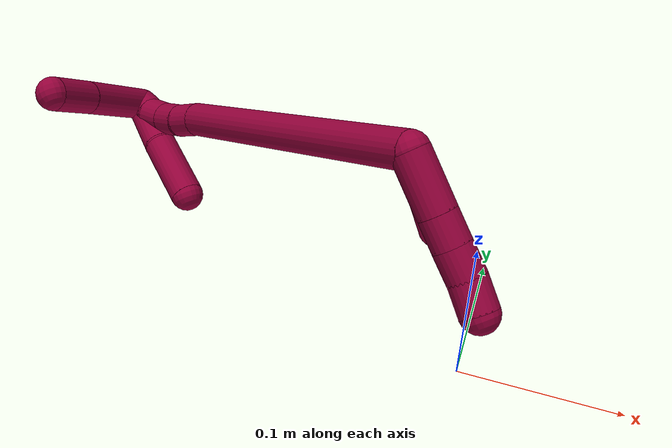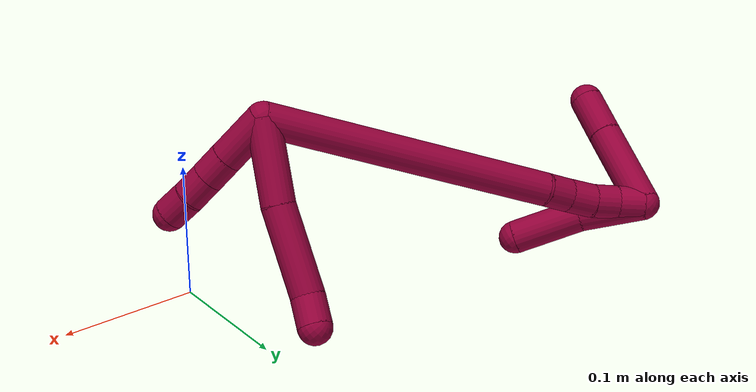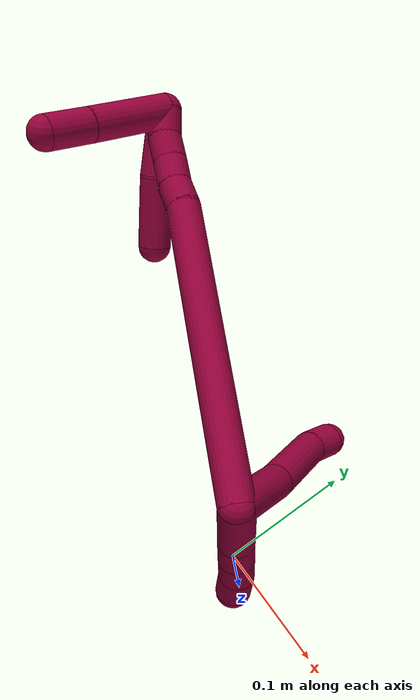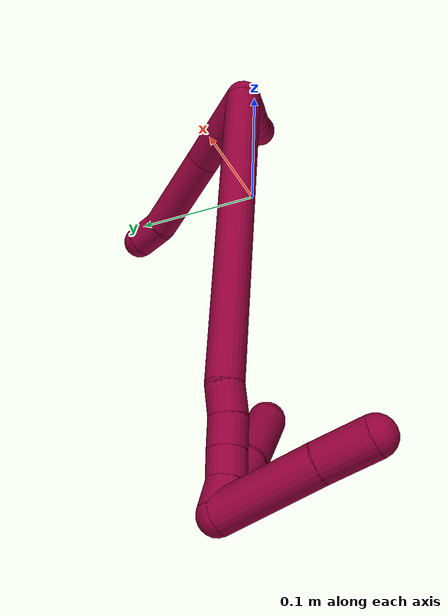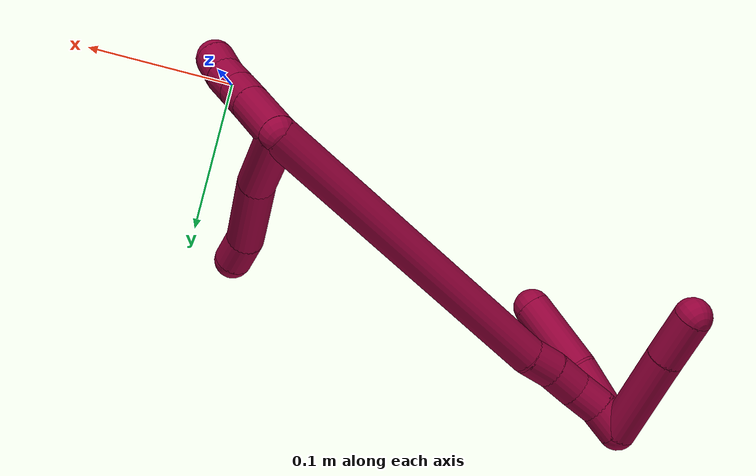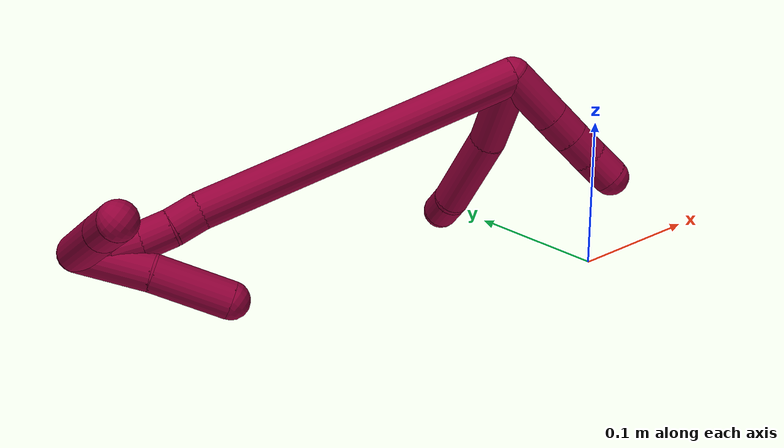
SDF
<sdf version="1.7">
 <world name="default">
  <model name="8">
   <static>0</static>
   <link name="8">
    <collision name="collision-cylinder-e_1_2_8">
     <pose>-0.000963 0.02784 -0.012903 -2.00478 -0.031385 0.049132</pose>
     <geometry><cylinder><radius>0.0125</radius><length>0.061399</length></cylinder></geometry>
     <surface>
      <friction><ode><mu>1.16</mu><mu2>1.16</mu2><slip1>0</slip1><slip2>0</slip2></ode></friction>
      <contact><ode><kp>1e+06</kp><kd>1</kd><max_vel>0</max_vel><min_depth>0.001</min_depth></ode></contact>
     </surface>
    </collision>
    <visual name="visual-cylinder-e_1_2_8">
     <pose>-0.000963 0.02784 -0.012903 -2.00478 -0.031385 0.049132</pose>
     <geometry><cylinder><radius>0.0125</radius><length>0.061399</length></cylinder></geometry>
     <material><ambient>0.584314 0 0.227451 1</ambient></material>
    </visual>
    <collision name="collision-cylinder-e_2_8_9">
     <pose>-0.004386 0.086995 -0.035457 -1.86978 -0.074907 0.101433</pose>
     <geometry><cylinder><radius>0.0125</radius><length>0.065722</length></cylinder></geometry>
     <surface>
      <friction><ode><mu>1.16</mu><mu2>1.16</mu2><slip1>0</slip1><slip2>0</slip2></ode></friction>
      <contact><ode><kp>1e+06</kp><kd>1</kd><max_vel>0</max_vel><min_depth>0.001</min_depth></ode></contact>
     </surface>
    </collision>
    <visual name="visual-cylinder-e_2_8_9">
     <pose>-0.004386 0.086995 -0.035457 -1.86978 -0.074907 0.101433</pose>
     <geometry><cylinder><radius>0.0125</radius><length>0.065722</length></cylinder></geometry>
     <material><ambient>0.584314 0 0.227451 1</ambient></material>
    </visual>
    <collision name="collision-cylinder-e_3_9_6">
     <pose>-0.004389 0.129171 -0.047728 -1.80734 0.216408 -0.27412</pose>
     <geometry><cylinder><radius>0.0125</radius><length>0.022879</length></cylinder></geometry>
     <surface>
      <friction><ode><mu>1.16</mu><mu2>1.16</mu2><slip1>0</slip1><slip2>0</slip2></ode></friction>
      <contact><ode><kp>1e+06</kp><kd>1</kd><max_vel>0</max_vel><min_depth>0.001</min_depth></ode></contact>
     </surface>
    </collision>
    <visual name="visual-cylinder-e_3_9_6">
     <pose>-0.004389 0.129171 -0.047728 -1.80734 0.216408 -0.27412</pose>
     <geometry><cylinder><radius>0.0125</radius><length>0.022879</length></cylinder></geometry>
     <material><ambient>0.584314 0 0.227451 1</ambient></material>
    </visual>
    <collision name="collision-cylinder-e_1_2_10">
     <pose>0.000669 0.002534 -0.01935 -3.01138 0.034269 -0.514059</pose>
     <geometry><cylinder><radius>0.0125</radius><length>0.039052</length></cylinder></geometry>
     <surface>
      <friction><ode><mu>1.16</mu><mu2>1.16</mu2><slip1>0</slip1><slip2>0</slip2></ode></friction>
      <contact><ode><kp>1e+06</kp><kd>1</kd><max_vel>0</max_vel><min_depth>0.001</min_depth></ode></contact>
     </surface>
    </collision>
    <visual name="visual-cylinder-e_1_2_10">
     <pose>0.000669 0.002534 -0.01935 -3.01138 0.034269 -0.514059</pose>
     <geometry><cylinder><radius>0.0125</radius><length>0.039052</length></cylinder></geometry>
     <material><ambient>0.584314 0 0.227451 1</ambient></material>
    </visual>
    <collision name="collision-cylinder-e_2_10_11">
     <pose>0.00175 0.006437 -0.04868 -3.00522 0.040837 -0.58112</pose>
     <geometry><cylinder><radius>0.0125</radius><length>0.020167</length></cylinder></geometry>
     <surface>
      <friction><ode><mu>1.16</mu><mu2>1.16</mu2><slip1>0</slip1><slip2>0</slip2></ode></friction>
      <contact><ode><kp>1e+06</kp><kd>1</kd><max_vel>0</max_vel><min_depth>0.001</min_depth></ode></contact>
     </surface>
    </collision>
    <visual name="visual-cylinder-e_2_10_11">
     <pose>0.00175 0.006437 -0.04868 -3.00522 0.040837 -0.58112</pose>
     <geometry><cylinder><radius>0.0125</radius><length>0.020167</length></cylinder></geometry>
     <material><ambient>0.584314 0 0.227451 1</ambient></material>
    </visual>
    <collision name="collision-cylinder-e_3_11_12">
     <pose>0.0027 0.009131 -0.068731 -3.01086 0.052966 -0.769053</pose>
     <geometry><cylinder><radius>0.0125</radius><length>0.020341</length></cylinder></geometry>
     <surface>
      <friction><ode><mu>1.16</mu><mu2>1.16</mu2><slip1>0</slip1><slip2>0</slip2></ode></friction>
      <contact><ode><kp>1e+06</kp><kd>1</kd><max_vel>0</max_vel><min_depth>0.001</min_depth></ode></contact>
     </surface>
    </collision>
    <visual name="visual-cylinder-e_3_11_12">
     <pose>0.0027 0.009131 -0.068731 -3.01086 0.052966 -0.769053</pose>
     <geometry><cylinder><radius>0.0125</radius><length>0.020341</length></cylinder></geometry>
     <material><ambient>0.584314 0 0.227451 1</ambient></material>
    </visual>
    <collision name="collision-cylinder-e_4_12_5">
     <pose>0.002868 0.010862 -0.089006 -3.10172 -0.036208 1.4745</pose>
     <geometry><cylinder><radius>0.0125</radius><length>0.02044</length></cylinder></geometry>
     <surface>
      <friction><ode><mu>1.16</mu><mu2>1.16</mu2><slip1>0</slip1><slip2>0</slip2></ode></friction>
      <contact><ode><kp>1e+06</kp><kd>1</kd><max_vel>0</max_vel><min_depth>0.001</min_depth></ode></contact>
     </surface>
    </collision>
    <visual name="visual-cylinder-e_4_12_5">
     <pose>0.002868 0.010862 -0.089006 -3.10172 -0.036208 1.4745</pose>
     <geometry><cylinder><radius>0.0125</radius><length>0.02044</length></cylinder></geometry>
     <material><ambient>0.584314 0 0.227451 1</ambient></material>
    </visual>
    <collision name="collision-cylinder-e_1_2_13">
     <pose>-0.072961 0.064626 0.049379 -0.918346 -0.7312 0.374111</pose>
     <geometry><cylinder><radius>0.0125</radius><length>0.218523</length></cylinder></geometry>
     <surface>
      <friction><ode><mu>1.16</mu><mu2>1.16</mu2><slip1>0</slip1><slip2>0</slip2></ode></friction>
      <contact><ode><kp>1e+06</kp><kd>1</kd><max_vel>0</max_vel><min_depth>0.001</min_depth></ode></contact>
     </surface>
    </collision>
    <visual name="visual-cylinder-e_1_2_13">
     <pose>-0.072961 0.064626 0.049379 -0.918346 -0.7312 0.374111</pose>
     <geometry><cylinder><radius>0.0125</radius><length>0.218523</length></cylinder></geometry>
     <material><ambient>0.584314 0 0.227451 1</ambient></material>
    </visual>
    <collision name="collision-cylinder-e_2_13_14">
     <pose>-0.153982 0.134383 0.102354 -0.959659 -0.910038 0.498622</pose>
     <geometry><cylinder><radius>0.0125</radius><length>0.020419</length></cylinder></geometry>
     <surface>
      <friction><ode><mu>1.16</mu><mu2>1.16</mu2><slip1>0</slip1><slip2>0</slip2></ode></friction>
      <contact><ode><kp>1e+06</kp><kd>1</kd><max_vel>0</max_vel><min_depth>0.001</min_depth></ode></contact>
     </surface>
    </collision>
    <visual name="visual-cylinder-e_2_13_14">
     <pose>-0.153982 0.134383 0.102354 -0.959659 -0.910038 0.498622</pose>
     <geometry><cylinder><radius>0.0125</radius><length>0.020419</length></cylinder></geometry>
     <material><ambient>0.584314 0 0.227451 1</ambient></material>
    </visual>
    <collision name="collision-cylinder-e_3_14_15">
     <pose>-0.169205 0.145535 0.110733 -0.899334 -0.749901 0.375435</pose>
     <geometry><cylinder><radius>0.0125</radius><length>0.021016</length></cylinder></geometry>
     <surface>
      <friction><ode><mu>1.16</mu><mu2>1.16</mu2><slip1>0</slip1><slip2>0</slip2></ode></friction>
      <contact><ode><kp>1e+06</kp><kd>1</kd><max_vel>0</max_vel><min_depth>0.001</min_depth></ode></contact>
     </surface>
    </collision>
    <visual name="visual-cylinder-e_3_14_15">
     <pose>-0.169205 0.145535 0.110733 -0.899334 -0.749901 0.375435</pose>
     <geometry><cylinder><radius>0.0125</radius><length>0.021016</length></cylinder></geometry>
     <material><ambient>0.584314 0 0.227451 1</ambient></material>
    </visual>
    <collision name="collision-cylinder-e_4_15_16">
     <pose>-0.183044 0.156294 0.121292 -0.687167 -0.729364 0.271486</pose>
     <geometry><cylinder><radius>0.0125</radius><length>0.020041</length></cylinder></geometry>
     <surface>
      <friction><ode><mu>1.16</mu><mu2>1.16</mu2><slip1>0</slip1><slip2>0</slip2></ode></friction>
      <contact><ode><kp>1e+06</kp><kd>1</kd><max_vel>0</max_vel><min_depth>0.001</min_depth></ode></contact>
     </surface>
    </collision>
    <visual name="visual-cylinder-e_4_15_16">
     <pose>-0.183044 0.156294 0.121292 -0.687167 -0.729364 0.271486</pose>
     <geometry><cylinder><radius>0.0125</radius><length>0.020041</length></cylinder></geometry>
     <material><ambient>0.584314 0 0.227451 1</ambient></material>
    </visual>
    <collision name="collision-cylinder-e_5_16_1">
     <pose>-0.194208 0.166534 0.134113 -0.662863 -0.465212 0.162683</pose>
     <geometry><cylinder><radius>0.0125</radius><length>0.020001</length></cylinder></geometry>
     <surface>
      <friction><ode><mu>1.16</mu><mu2>1.16</mu2><slip1>0</slip1><slip2>0</slip2></ode></friction>
      <contact><ode><kp>1e+06</kp><kd>1</kd><max_vel>0</max_vel><min_depth>0.001</min_depth></ode></contact>
     </surface>
    </collision>
    <visual name="visual-cylinder-e_5_16_1">
     <pose>-0.194208 0.166534 0.134113 -0.662863 -0.465212 0.162683</pose>
     <geometry><cylinder><radius>0.0125</radius><length>0.020001</length></cylinder></geometry>
     <material><ambient>0.584314 0 0.227451 1</ambient></material>
    </visual>
    <collision name="collision-cylinder-e_1_1_17">
     <pose>-0.207578 0.140468 0.142223 1.53706 -0.274169 -0.265181</pose>
     <geometry><cylinder><radius>0.0125</radius><length>0.065619</length></cylinder></geometry>
     <surface>
      <friction><ode><mu>1.16</mu><mu2>1.16</mu2><slip1>0</slip1><slip2>0</slip2></ode></friction>
      <contact><ode><kp>1e+06</kp><kd>1</kd><max_vel>0</max_vel><min_depth>0.001</min_depth></ode></contact>
     </surface>
    </collision>
    <visual name="visual-cylinder-e_1_1_17">
     <pose>-0.207578 0.140468 0.142223 1.53706 -0.274169 -0.265181</pose>
     <geometry><cylinder><radius>0.0125</radius><length>0.065619</length></cylinder></geometry>
     <material><ambient>0.584314 0 0.227451 1</ambient></material>
    </visual>
    <collision name="collision-cylinder-e_2_17_4">
     <pose>-0.221537 0.092487 0.143848 1.5367 -0.299768 -0.28986</pose>
     <geometry><cylinder><radius>0.0125</radius><length>0.034381</length></cylinder></geometry>
     <surface>
      <friction><ode><mu>1.16</mu><mu2>1.16</mu2><slip1>0</slip1><slip2>0</slip2></ode></friction>
      <contact><ode><kp>1e+06</kp><kd>1</kd><max_vel>0</max_vel><min_depth>0.001</min_depth></ode></contact>
     </surface>
    </collision>
    <visual name="visual-cylinder-e_2_17_4">
     <pose>-0.221537 0.092487 0.143848 1.5367 -0.299768 -0.28986</pose>
     <geometry><cylinder><radius>0.0125</radius><length>0.034381</length></cylinder></geometry>
     <material><ambient>0.584314 0 0.227451 1</ambient></material>
    </visual>
    <collision name="collision-cylinder-e_1_1_18">
     <pose>-0.193754 0.162278 0.119711 2.71468 0.206704 0.892609</pose>
     <geometry><cylinder><radius>0.0125</radius><length>0.048149</length></cylinder></geometry>
     <surface>
      <friction><ode><mu>1.16</mu><mu2>1.16</mu2><slip1>0</slip1><slip2>0</slip2></ode></friction>
      <contact><ode><kp>1e+06</kp><kd>1</kd><max_vel>0</max_vel><min_depth>0.001</min_depth></ode></contact>
     </surface>
    </collision>
    <visual name="visual-cylinder-e_1_1_18">
     <pose>-0.193754 0.162278 0.119711 2.71468 0.206704 0.892609</pose>
     <geometry><cylinder><radius>0.0125</radius><length>0.048149</length></cylinder></geometry>
     <material><ambient>0.584314 0 0.227451 1</ambient></material>
    </visual>
    <collision name="collision-cylinder-e_2_18_3">
     <pose>-0.183226 0.145768 0.073864 2.87158 0.217197 1.35271</pose>
     <geometry><cylinder><radius>0.0125</radius><length>0.051851</length></cylinder></geometry>
     <surface>
      <friction><ode><mu>1.16</mu><mu2>1.16</mu2><slip1>0</slip1><slip2>0</slip2></ode></friction>
      <contact><ode><kp>1e+06</kp><kd>1</kd><max_vel>0</max_vel><min_depth>0.001</min_depth></ode></contact>
     </surface>
    </collision>
    <visual name="visual-cylinder-e_2_18_3">
     <pose>-0.183226 0.145768 0.073864 2.87158 0.217197 1.35271</pose>
     <geometry><cylinder><radius>0.0125</radius><length>0.051851</length></cylinder></geometry>
     <material><ambient>0.584314 0 0.227451 1</ambient></material>
    </visual>
    <collision name="collision-sphere-3">
     <pose>-0.177639 0.139015 0.049465 0 -0 0</pose>
     <geometry><sphere><radius>0.0125</radius></sphere></geometry>
     <surface>
      <friction><ode><mu>1.16</mu><mu2>1.16</mu2><slip1>0</slip1><slip2>0</slip2></ode></friction>
      <contact><ode><kp>1e+06</kp><kd>1</kd><max_vel>0</max_vel><min_depth>0.001</min_depth></ode></contact>
     </surface>
    </collision>
    <visual name="visual-sphere-3">
     <pose>-0.177639 0.139015 0.049465 0 -0 0</pose>
     <geometry><sphere><radius>0.0125</radius></sphere></geometry>
     <material><ambient>0.584314 0 0.227451 1</ambient></material>
    </visual>
    <collision name="collision-sphere-11">
     <pose>0.002161 0.007807 -0.058662 0 -0 0</pose>
     <geometry><sphere><radius>0.0125</radius></sphere></geometry>
     <surface>
      <friction><ode><mu>1.16</mu><mu2>1.16</mu2><slip1>0</slip1><slip2>0</slip2></ode></friction>
      <contact><ode><kp>1e+06</kp><kd>1</kd><max_vel>0</max_vel><min_depth>0.001</min_depth></ode></contact>
     </surface>
    </collision>
    <visual name="visual-sphere-11">
     <pose>0.002161 0.007807 -0.058662 0 -0 0</pose>
     <geometry><sphere><radius>0.0125</radius></sphere></geometry>
     <material><ambient>0.584314 0 0.227451 1</ambient></material>
    </visual>
    <collision name="collision-sphere-10">
     <pose>0.001338 0.005068 -0.038699 0 -0 0</pose>
     <geometry><sphere><radius>0.0125</radius></sphere></geometry>
     <surface>
      <friction><ode><mu>1.16</mu><mu2>1.16</mu2><slip1>0</slip1><slip2>0</slip2></ode></friction>
      <contact><ode><kp>1e+06</kp><kd>1</kd><max_vel>0</max_vel><min_depth>0.001</min_depth></ode></contact>
     </surface>
    </collision>
    <visual name="visual-sphere-10">
     <pose>0.001338 0.005068 -0.038699 0 -0 0</pose>
     <geometry><sphere><radius>0.0125</radius></sphere></geometry>
     <material><ambient>0.584314 0 0.227451 1</ambient></material>
    </visual>
    <collision name="collision-sphere-6">
     <pose>-0.001933 0.140033 -0.050346 0 -0 0</pose>
     <geometry><sphere><radius>0.0125</radius></sphere></geometry>
     <surface>
      <friction><ode><mu>1.16</mu><mu2>1.16</mu2><slip1>0</slip1><slip2>0</slip2></ode></friction>
      <contact><ode><kp>1e+06</kp><kd>1</kd><max_vel>0</max_vel><min_depth>0.001</min_depth></ode></contact>
     </surface>
    </collision>
    <visual name="visual-sphere-6">
     <pose>-0.001933 0.140033 -0.050346 0 -0 0</pose>
     <geometry><sphere><radius>0.0125</radius></sphere></geometry>
     <material><ambient>0.584314 0 0.227451 1</ambient></material>
    </visual>
    <collision name="collision-sphere-9">
     <pose>-0.006845 0.11831 -0.045109 0 -0 0</pose>
     <geometry><sphere><radius>0.0125</radius></sphere></geometry>
     <surface>
      <friction><ode><mu>1.16</mu><mu2>1.16</mu2><slip1>0</slip1><slip2>0</slip2></ode></friction>
      <contact><ode><kp>1e+06</kp><kd>1</kd><max_vel>0</max_vel><min_depth>0.001</min_depth></ode></contact>
     </surface>
    </collision>
    <visual name="visual-sphere-9">
     <pose>-0.006845 0.11831 -0.045109 0 -0 0</pose>
     <geometry><sphere><radius>0.0125</radius></sphere></geometry>
     <material><ambient>0.584314 0 0.227451 1</ambient></material>
    </visual>
    <collision name="collision-sphere-2">
     <geometry><sphere><radius>0.0125</radius></sphere></geometry>
     <surface>
      <friction><ode><mu>1.16</mu><mu2>1.16</mu2><slip1>0</slip1><slip2>0</slip2></ode></friction>
      <contact><ode><kp>1e+06</kp><kd>1</kd><max_vel>0</max_vel><min_depth>0.001</min_depth></ode></contact>
     </surface>
    </collision>
    <visual name="visual-sphere-2">
     <geometry><sphere><radius>0.0125</radius></sphere></geometry>
     <material><ambient>0.584314 0 0.227451 1</ambient></material>
    </visual>
    <collision name="collision-sphere-8">
     <pose>-0.001927 0.05568 -0.025805 0 -0 0</pose>
     <geometry><sphere><radius>0.0125</radius></sphere></geometry>
     <surface>
      <friction><ode><mu>1.16</mu><mu2>1.16</mu2><slip1>0</slip1><slip2>0</slip2></ode></friction>
      <contact><ode><kp>1e+06</kp><kd>1</kd><max_vel>0</max_vel><min_depth>0.001</min_depth></ode></contact>
     </surface>
    </collision>
    <visual name="visual-sphere-8">
     <pose>-0.001927 0.05568 -0.025805 0 -0 0</pose>
     <geometry><sphere><radius>0.0125</radius></sphere></geometry>
     <material><ambient>0.584314 0 0.227451 1</ambient></material>
    </visual>
    <collision name="collision-sphere-12">
     <pose>0.003238 0.010455 -0.078801 0 -0 0</pose>
     <geometry><sphere><radius>0.0125</radius></sphere></geometry>
     <surface>
      <friction><ode><mu>1.16</mu><mu2>1.16</mu2><slip1>0</slip1><slip2>0</slip2></ode></friction>
      <contact><ode><kp>1e+06</kp><kd>1</kd><max_vel>0</max_vel><min_depth>0.001</min_depth></ode></contact>
     </surface>
    </collision>
    <visual name="visual-sphere-12">
     <pose>0.003238 0.010455 -0.078801 0 -0 0</pose>
     <geometry><sphere><radius>0.0125</radius></sphere></geometry>
     <material><ambient>0.584314 0 0.227451 1</ambient></material>
    </visual>
    <collision name="collision-sphere-5">
     <pose>0.002498 0.011269 -0.099211 0 -0 0</pose>
     <geometry><sphere><radius>0.0125</radius></sphere></geometry>
     <surface>
      <friction><ode><mu>1.16</mu><mu2>1.16</mu2><slip1>0</slip1><slip2>0</slip2></ode></friction>
      <contact><ode><kp>1e+06</kp><kd>1</kd><max_vel>0</max_vel><min_depth>0.001</min_depth></ode></contact>
     </surface>
    </collision>
    <visual name="visual-sphere-5">
     <pose>0.002498 0.011269 -0.099211 0 -0 0</pose>
     <geometry><sphere><radius>0.0125</radius></sphere></geometry>
     <material><ambient>0.584314 0 0.227451 1</ambient></material>
    </visual>
    <collision name="collision-sphere-13">
     <pose>-0.145922 0.129252 0.098758 0 -0 0</pose>
     <geometry><sphere><radius>0.0125</radius></sphere></geometry>
     <surface>
      <friction><ode><mu>1.16</mu><mu2>1.16</mu2><slip1>0</slip1><slip2>0</slip2></ode></friction>
      <contact><ode><kp>1e+06</kp><kd>1</kd><max_vel>0</max_vel><min_depth>0.001</min_depth></ode></contact>
     </surface>
    </collision>
    <visual name="visual-sphere-13">
     <pose>-0.145922 0.129252 0.098758 0 -0 0</pose>
     <geometry><sphere><radius>0.0125</radius></sphere></geometry>
     <material><ambient>0.584314 0 0.227451 1</ambient></material>
    </visual>
    <collision name="collision-sphere-14">
     <pose>-0.162043 0.139515 0.105949 0 -0 0</pose>
     <geometry><sphere><radius>0.0125</radius></sphere></geometry>
     <surface>
      <friction><ode><mu>1.16</mu><mu2>1.16</mu2><slip1>0</slip1><slip2>0</slip2></ode></friction>
      <contact><ode><kp>1e+06</kp><kd>1</kd><max_vel>0</max_vel><min_depth>0.001</min_depth></ode></contact>
     </surface>
    </collision>
    <visual name="visual-sphere-14">
     <pose>-0.162043 0.139515 0.105949 0 -0 0</pose>
     <geometry><sphere><radius>0.0125</radius></sphere></geometry>
     <material><ambient>0.584314 0 0.227451 1</ambient></material>
    </visual>
    <collision name="collision-sphere-15">
     <pose>-0.176367 0.151555 0.115516 0 -0 0</pose>
     <geometry><sphere><radius>0.0125</radius></sphere></geometry>
     <surface>
      <friction><ode><mu>1.16</mu><mu2>1.16</mu2><slip1>0</slip1><slip2>0</slip2></ode></friction>
      <contact><ode><kp>1e+06</kp><kd>1</kd><max_vel>0</max_vel><min_depth>0.001</min_depth></ode></contact>
     </surface>
    </collision>
    <visual name="visual-sphere-15">
     <pose>-0.176367 0.151555 0.115516 0 -0 0</pose>
     <geometry><sphere><radius>0.0125</radius></sphere></geometry>
     <material><ambient>0.584314 0 0.227451 1</ambient></material>
    </visual>
    <collision name="collision-sphere-16">
     <pose>-0.189722 0.161034 0.127067 0 -0 0</pose>
     <geometry><sphere><radius>0.0125</radius></sphere></geometry>
     <surface>
      <friction><ode><mu>1.16</mu><mu2>1.16</mu2><slip1>0</slip1><slip2>0</slip2></ode></friction>
      <contact><ode><kp>1e+06</kp><kd>1</kd><max_vel>0</max_vel><min_depth>0.001</min_depth></ode></contact>
     </surface>
    </collision>
    <visual name="visual-sphere-16">
     <pose>-0.189722 0.161034 0.127067 0 -0 0</pose>
     <geometry><sphere><radius>0.0125</radius></sphere></geometry>
     <material><ambient>0.584314 0 0.227451 1</ambient></material>
    </visual>
    <collision name="collision-sphere-1">
     <pose>-0.198695 0.172034 0.141158 0 -0 0</pose>
     <geometry><sphere><radius>0.0125</radius></sphere></geometry>
     <surface>
      <friction><ode><mu>1.16</mu><mu2>1.16</mu2><slip1>0</slip1><slip2>0</slip2></ode></friction>
      <contact><ode><kp>1e+06</kp><kd>1</kd><max_vel>0</max_vel><min_depth>0.001</min_depth></ode></contact>
     </surface>
    </collision>
    <visual name="visual-sphere-1">
     <pose>-0.198695 0.172034 0.141158 0 -0 0</pose>
     <geometry><sphere><radius>0.0125</radius></sphere></geometry>
     <material><ambient>0.584314 0 0.227451 1</ambient></material>
    </visual>
    <collision name="collision-sphere-18">
     <pose>-0.188813 0.152521 0.098264 0 -0 0</pose>
     <geometry><sphere><radius>0.0125</radius></sphere></geometry>
     <surface>
      <friction><ode><mu>1.16</mu><mu2>1.16</mu2><slip1>0</slip1><slip2>0</slip2></ode></friction>
      <contact><ode><kp>1e+06</kp><kd>1</kd><max_vel>0</max_vel><min_depth>0.001</min_depth></ode></contact>
     </surface>
    </collision>
    <visual name="visual-sphere-18">
     <pose>-0.188813 0.152521 0.098264 0 -0 0</pose>
     <geometry><sphere><radius>0.0125</radius></sphere></geometry>
     <material><ambient>0.584314 0 0.227451 1</ambient></material>
    </visual>
    <collision name="collision-sphere-17">
     <pose>-0.216461 0.108901 0.143288 0 -0 0</pose>
     <geometry><sphere><radius>0.0125</radius></sphere></geometry>
     <surface>
      <friction><ode><mu>1.16</mu><mu2>1.16</mu2><slip1>0</slip1><slip2>0</slip2></ode></friction>
      <contact><ode><kp>1e+06</kp><kd>1</kd><max_vel>0</max_vel><min_depth>0.001</min_depth></ode></contact>
     </surface>
    </collision>
    <visual name="visual-sphere-17">
     <pose>-0.216461 0.108901 0.143288 0 -0 0</pose>
     <geometry><sphere><radius>0.0125</radius></sphere></geometry>
     <material><ambient>0.584314 0 0.227451 1</ambient></material>
    </visual>
    <collision name="collision-sphere-4">
     <pose>-0.226613 0.076073 0.144408 0 -0 0</pose>
     <geometry><sphere><radius>0.0125</radius></sphere></geometry>
     <surface>
      <friction><ode><mu>1.16</mu><mu2>1.16</mu2><slip1>0</slip1><slip2>0</slip2></ode></friction>
      <contact><ode><kp>1e+06</kp><kd>1</kd><max_vel>0</max_vel><min_depth>0.001</min_depth></ode></contact>
     </surface>
    </collision>
    <visual name="visual-sphere-4">
     <pose>-0.226613 0.076073 0.144408 0 -0 0</pose>
     <geometry><sphere><radius>0.0125</radius></sphere></geometry>
     <material><ambient>0.584314 0 0.227451 1</ambient></material>
    </visual>
    <inertial>
     <pose>-0.094049 0.086901 0.046698 0 -0 0</pose>
     <mass>0.75</mass>
     <inertia>
      <ixx>0.000946</ixx>
      <ixy>0</ixy>
      <ixz>0</ixz>
      <iyy>0.000911</iyy>
      <iyz>0</iyz>
      <izz>5.5e-05</izz>
     </inertia>
    </inertial>
   </link>
   <pose>-0.048014 0.031224 0.135315 -0.754375 -0.401093 0.436441</pose>
  </model>
 </world>
</sdf>
